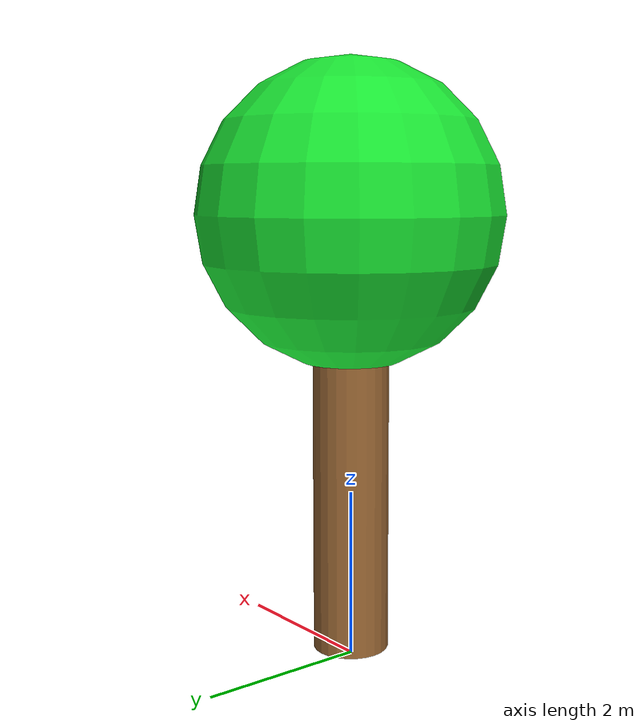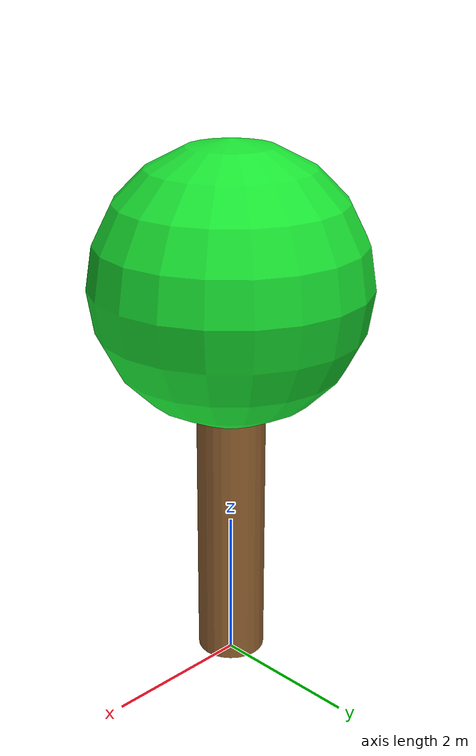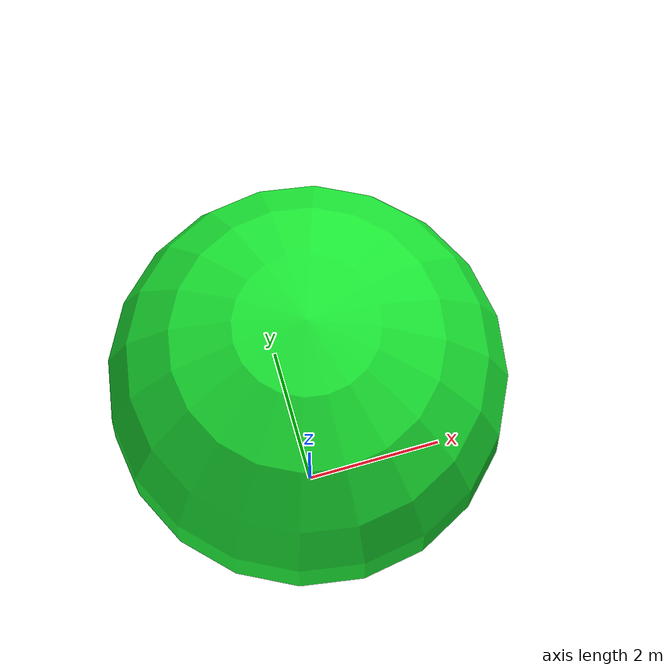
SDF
<?xml version="1.0" ?>
<sdf version="1.7">
  <model name="tree_simple_thick">
    <static>true</static>
    <link name="link">
      <pose>0 0 0.1 0 0 0</pose>

      <collision name="collision_trunk">
        <pose>0 0 2.0 0 0 0</pose>
        <geometry>
          <cylinder>
            <radius>0.45</radius>
            <length>4</length>
          </cylinder>
        </geometry>
      </collision>

      <collision name="collision_treetop">
        <pose>0 0 5.2 0 0 0</pose>
        <geometry>
          <sphere>
            <radius>1.8</radius>
          </sphere>
        </geometry>
      </collision>

      <visual name="trunk">
        <pose>0 0 2.0 0 0 0</pose>
        <geometry>
          <cylinder>
            <radius>0.45</radius>
            <length>4</length>
          </cylinder>
        </geometry>
        <material>
          <ambient>0.4 0.2 0.0 1.0</ambient>
          <diffuse>0.6 0.4 0.2 1.0</diffuse>
          <specular>0 0 0 1</specular>
          <emissive>0 0 0 1</emissive>
        </material>
      </visual>

      <visual name="treetop">
        <pose>0 0 5.2 0 0 0</pose>
        <geometry>
          <sphere>
            <radius>1.8</radius>
          </sphere>
        </geometry>
        <material>
          <ambient>0.0 0.5 0.1 1.0</ambient>
          <diffuse>0.1 0.9 0.2 1.0</diffuse>
          <specular>0 0 0 1</specular>
          <emissive>0 0 0 1</emissive>
        </material>
      </visual>

    </link>
  </model>
</sdf>
